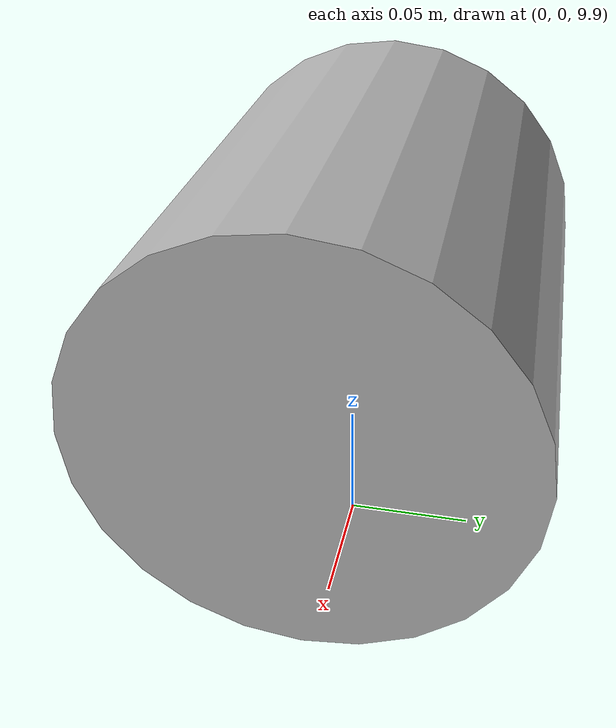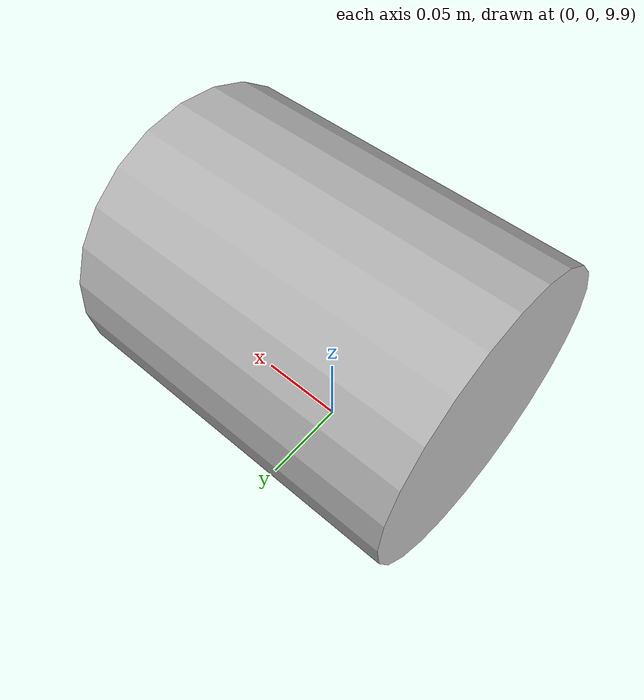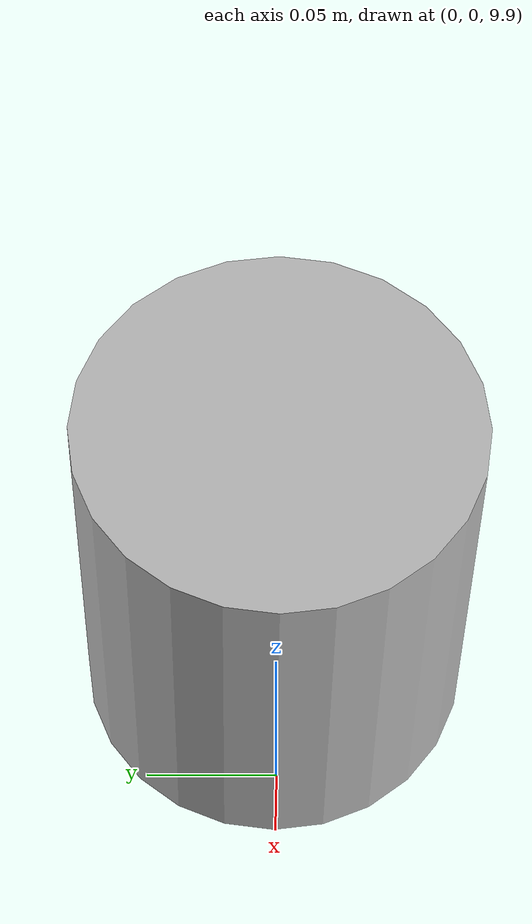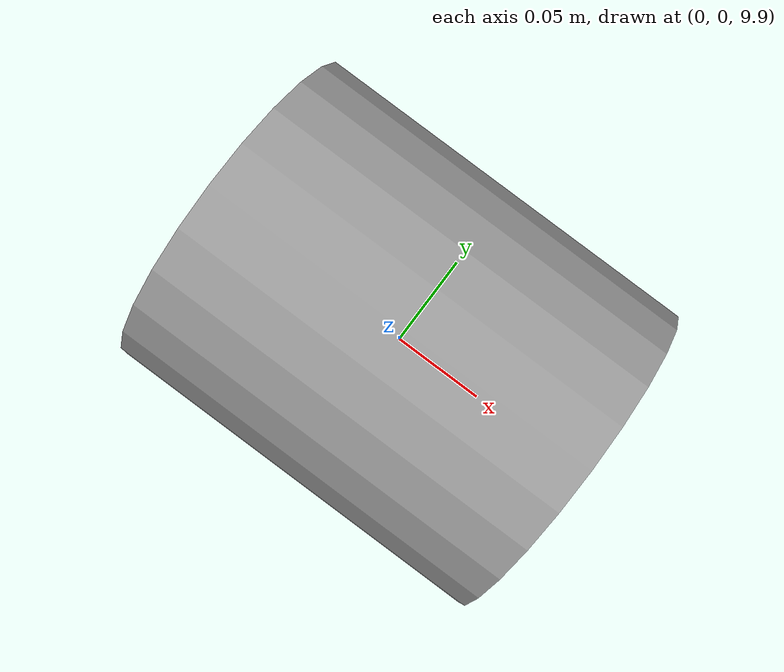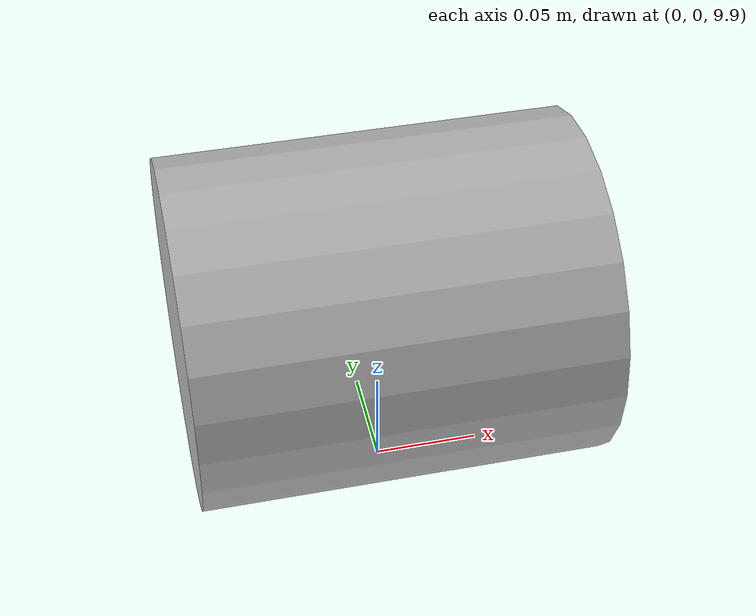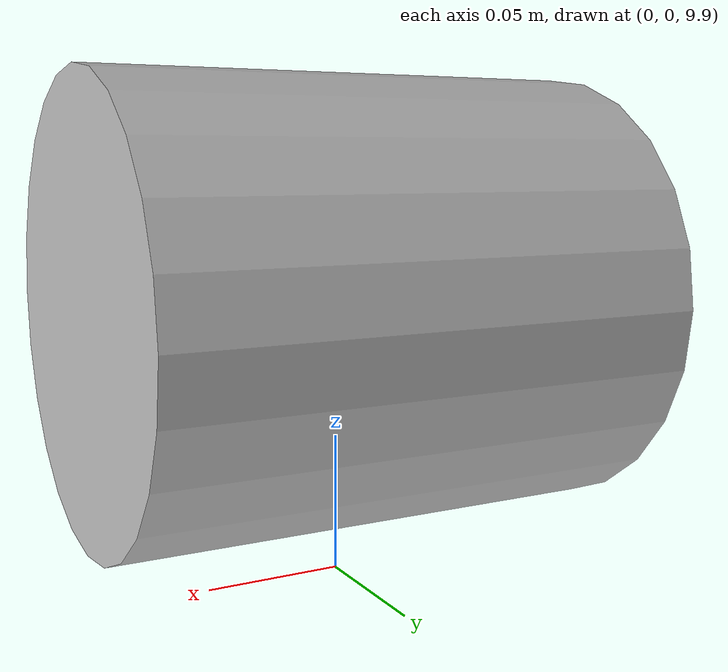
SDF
<?xml version="1.0" ?>
<sdf version="1.5">
  <model name="lds">
    <static>false</static>

    <link name="laser_link">
      <pose>0 0 10 1.57 1.57 -1.57</pose>
      <gravity>false</gravity>
      <visual name="visual">
        <geometry>
          <cylinder>
            <radius>0.08</radius>
            <length>0.185</length>
          </cylinder>
        </geometry>
      </visual>
      <collision name="collision">
        <geometry>
          <cylinder>
            <radius>0.08</radius>
            <length>0.185</length>
          </cylinder>
        </geometry>
      </collision>
      <sensor name='laser_sensor' type='ray'>
      <ray>
          <scan>
            <horizontal>
              <samples>761</samples>
              <resolution>1</resolution>
              <min_angle>-1.658062761</min_angle>
              <max_angle>1.658062761</max_angle>
            </horizontal>
          </scan>
          <!-- sick511 angle range +-190, resolution 0.25 -->
          <range>
            <min>0.2</min>
            <max>26</max>
            <resolution>0.008</resolution>
          </range>
          <!-- sick511 range 26(m), resolution 8(mm) -->
          <noise>
            <type>gaussian</type>
            <mean>0</mean>
            <stddev>0.001</stddev>
          </noise>
        </ray>
        <plugin name='laser' filename='libgazebo_ros_laser.so'>
          <topicName>/lds/laser/scan</topicName>
          <frameName>laser_link</frameName>
        </plugin>
        <always_on>true</always_on>
        <update_rate>30</update_rate>
        <visualize>true</visualize>
      </sensor>
    </link>

  </model>
</sdf>
